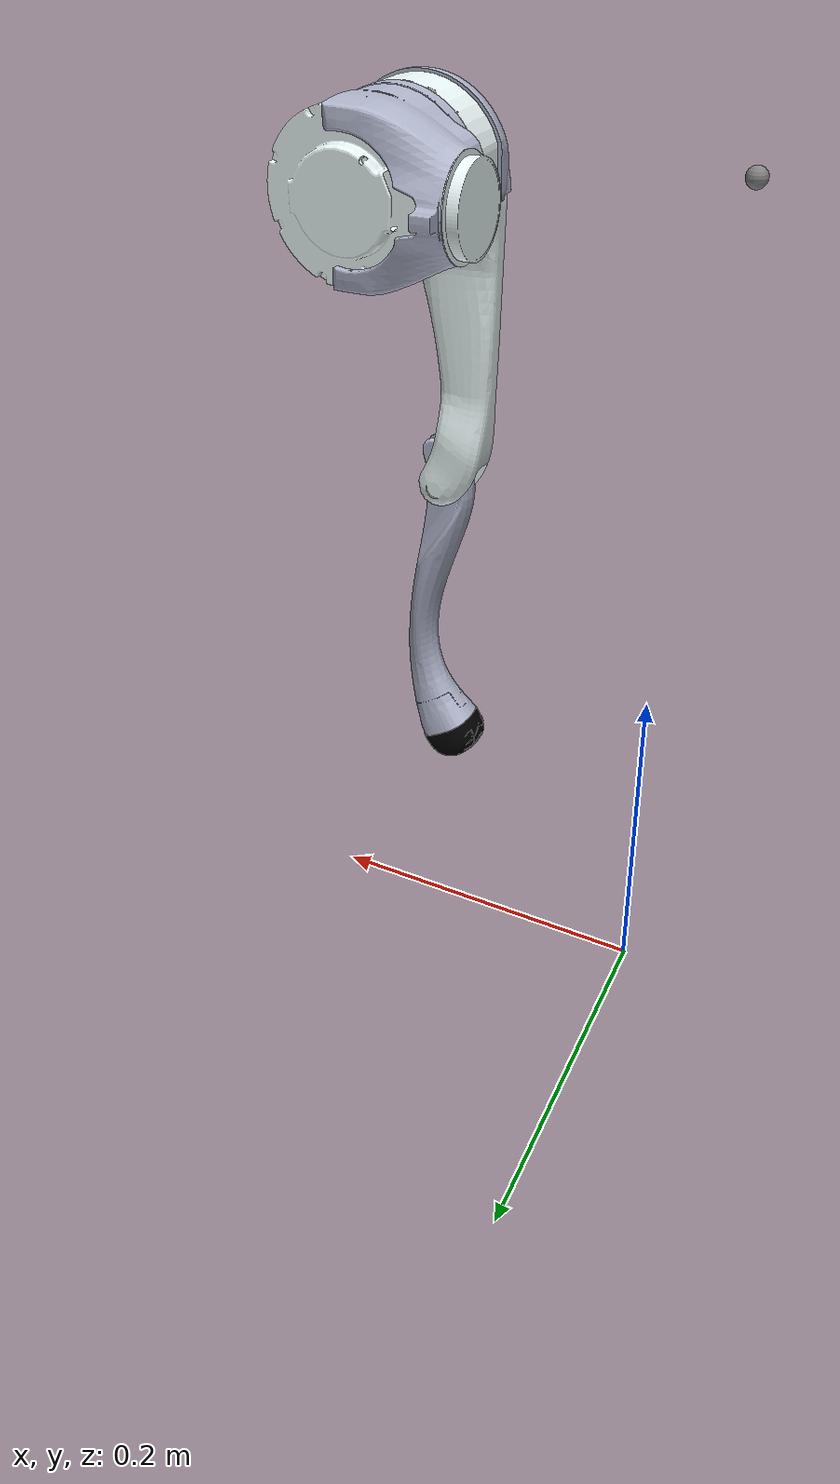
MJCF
<mujoco model="go2">
  <compiler angle="radian" meshdir="assets" autolimits="true"/>

  <option iterations="1" ls_iterations="5" timestep="0.004" integrator="Euler">
    <flag eulerdamp="disable"/>
  </option>

  <!-- frictionloss = [0.2, 0.2, 1.2] armature = [0.005, 0.005, 0.2] -->
  <!-- Regressed: frictionloss = [0.2, 0.35, 1.36] armature = [0.01, 0.01, 0.01] -->
  <default>
    <default class="go2">
      <geom friction="0.6" contype="0" conaffinity="0" type="mesh"/>
      <joint axis="0 1 0" damping="0.5" frictionloss="0.35" armature="0.01"/>
      <position forcerange="-23.7 23.7" kp="35"/>
      <default class="go2/abduction">
        <joint axis="1 0 0" range="-1.0472 1.0472"/>
        <position ctrlrange="-0.9472 0.9472"/>
      </default>
      <default class="go2/hip">
        <default class="go2/front_hip">
          <joint range="-1.5708 3.4907"/>
          <position ctrlrange="-1.4 2.5"/>
        </default>
        <default class="go2/back_hip">
          <joint range="-0.5236 4.5379"/>
          <position ctrlrange="-0.4236 2.5"/>
        </default>
      </default>
      <default class="go2/knee">
        <joint range="-2.7227 -0.83776" frictionloss="1.36" armature="0.01"/>
        <position forcerange="-45.43 45.43" ctrlrange="-2.6227 -0.82776"/>
      </default>
      <default class="go2/foot">
        <site pos="-0.002 0 -0.213"/>
      </default>
      <default class="go2/collision">
        <geom group="3" contype="0" conaffinity="1"/>
        <default class="go2/collision/foot">
          <geom type="sphere" size="0.022" pos="-0.002 0 -0.213" solimp="0.9 .95 0.022" condim="6" friction="0.8 0.02 0.01"/>
        </default>
      </default>
    </default>
  </default>

  <asset>
    <material name="metal" rgba=".9 .95 .95 1"/>
    <material name="black" rgba="0 0 0 1"/>
    <material name="white" rgba="1 1 1 1"/>
    <material name="gray" rgba="0.671705 0.692426 0.774270 1"/>
    <mesh file="base_0.obj"/>
    <mesh file="base_1.obj"/>
    <mesh file="base_2.obj"/>
    <mesh file="base_3.obj"/>
    <mesh file="base_4.obj"/>
    <mesh file="hip_0.obj"/>
    <mesh file="hip_1.obj"/>
    <mesh file="thigh_0.obj"/>
    <mesh file="thigh_1.obj"/>
    <mesh file="thigh_mirror_0.obj"/>
    <mesh file="thigh_mirror_1.obj"/>
    <mesh file="calf_0.obj"/>
    <mesh file="calf_1.obj"/>
    <mesh file="calf_mirror_0.obj"/>
    <mesh file="calf_mirror_1.obj"/>
    <mesh file="foot.obj"/>
  </asset>

   <worldbody>
        <body name="base_link" pos="0 0 0.445" childclass="go2">
            <site name="imu" pos="-0.02557 0 0.04232"/>
            <body name="front_right_hip" pos="0.1934 -0.0465 0">
                <inertial pos="-0.0054 -0.00194 -0.000105" quat="0.498237 0.505462 0.499245 0.497014"
                mass="0.678"
                diaginertia="0.00088403 0.000596003 0.000479967"/>
                <joint name="front_right_hip_joint" class="go2/abduction"/>
                <geom mesh="hip_0" material="metal" class="go2" quat="4.63268e-05 1 0 0"/>
                <geom mesh="hip_1" material="gray" class="go2" quat="4.63268e-05 1 0 0"/>
                <body name="front_right_thigh" pos="0 -0.0955 0">
                    <inertial pos="-0.00374 0.0223 -0.0327" quat="0.551623 -0.0200632 0.0847635 0.829533"
                        mass="1.152"
                        diaginertia="0.00594973 0.00584149 0.000878787"/>
                    <joint name="front_right_thigh_joint" class="go2/front_hip"/>
                    <geom mesh="thigh_mirror_0" material="metal" class="go2"/>
                    <geom mesh="thigh_mirror_1" material="gray" class="go2"/>
                    <body name="front_right_calf" pos="0 0 -0.213">
                        <inertial pos="0.00629595 0.000622121 -0.141417"
                        quat="0.703508 -0.00450087 0.00154099 0.710672"
                        mass="0.241352" diaginertia="0.0014901 0.00146356 5.31397e-05"/>
                        <joint name="front_right_calf_joint" class="go2/knee"/>
                        <geom mesh="calf_mirror_0" material="gray" class="go2"/>
                        <geom mesh="calf_mirror_1" material="black" class="go2"/>
                        <geom pos="0 0 -0.213" mesh="foot" class="go2" material="black"/>
                        <geom name="front_right" class="go2/collision/foot"/>
                        <site name="front_right_foot" class="go2/foot"/>
                    </body>
                </body>
            </body>
        </body>
    </worldbody>

  <actuator>
    <position class="go2/abduction" name="front_right_hip" joint="front_right_hip_joint"/>
    <position class="go2/hip" name="front_right_thigh" joint="front_right_thigh_joint"/>
    <position class="go2/knee" name="front_right_calf" joint="front_right_calf_joint"/>
  </actuator>

  <sensor>
    <!-- IMU: -->
    <gyro name="imu_gyro" site="imu"/>
    <framequat name="imu_orientation" objtype="site" objname="imu"/>
    <accelerometer name="imu_acceleration" site="imu"/>

    <!-- State Estimator: -->
    <velocimeter name="local_linvel" site="imu"/>
    <framepos name="imu_position" objtype="site" objname="imu"/>
    <framelinvel name="fr_global_linvel" objtype="site" objname="front_right_foot"/>
    <framepos name="fr_pos" objtype="site" objname="front_right_foot" reftype="site" refname="imu"/>

    <!-- Globals: -->
    <framezaxis name="upvector" objtype="site" objname="imu"/>
    <framexaxis name="forwardvector" objtype="site" objname="imu"/>
    <framelinvel name="global_linvel" objtype="site" objname="imu"/>
    <frameangvel name="global_angvel" objtype="site" objname="imu"/>
  </sensor>

</mujoco>
